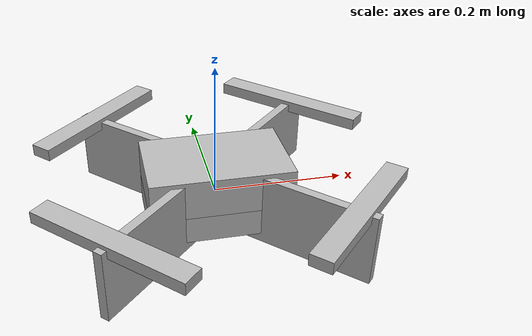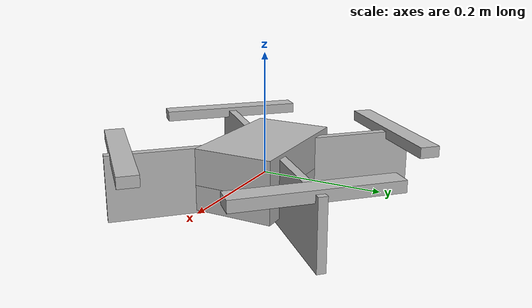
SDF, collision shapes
<?xml version="1.0" ?>
<sdf version='1.6'>
  <model name='spiri'>
	  	<static>true</static>

	  	<plugin name='simple_drone' filename='libplugin_drone.so'>
	        <bodyName>base</bodyName>
	        <imuTopic>/drone/imu</imuTopic>
	        <rollpitchProportionalGain>10.0</rollpitchProportionalGain>
	        <rollpitchDifferentialGain>5.0</rollpitchDifferentialGain>
	        <rollpitchLimit>0.5</rollpitchLimit>
	        <yawProportionalGain>2.0</yawProportionalGain>
	        <yawDifferentialGain>1.0</yawDifferentialGain>
	        <yawLimit>1.5</yawLimit>
	        <velocityXYProportionalGain>5.0</velocityXYProportionalGain>
	        <velocityXYDifferentialGain>2.3</velocityXYDifferentialGain>
	        <velocityXYLimit>2</velocityXYLimit>
	        <velocityZProportionalGain>5.0</velocityZProportionalGain>
	        <velocityZDifferentialGain>1.0</velocityZDifferentialGain>
	        <velocityZLimit>-1</velocityZLimit>
	        <positionXYProportionalGain>1.1</positionXYProportionalGain>
	        <positionXYDifferentialGain>0.0</positionXYDifferentialGain>
	        <positionXYIntegralGain>0.0</positionXYIntegralGain>
	        <positionXYLimit>5</positionXYLimit>
	        <positionZProportionalGain>1.0</positionZProportionalGain>
	        <positionZDifferentialGain>0.2</positionZDifferentialGain>
	        <positionZLimit>-1</positionZLimit>
	        <maxForce>40</maxForce>
	        <motionSmallNoise>0.05</motionSmallNoise>
	        <motionDriftNoise>0.03</motionDriftNoise>
	        <motionDriftNoiseTime>5.0</motionDriftNoiseTime>
	    </plugin>

	    <link name='base'>
	      	<pose frame=''>0 0 0 0 -0 -0</pose>
	      	<inertial>
		        <pose frame=''>0 0.00268 -0.000742 0 -0 0</pose>
		        <mass>1.437</mass>
		        <inertia>
					<ixx>0.1152</ixx>
					<ixy>0</ixy>
					<ixz>0</ixz>
					<iyy>0.1152</iyy>
					<iyz>0</iyz>
					<izz>0.218</izz>
	        	</inertia>
	      	</inertial>

		    <collision name='base_collision'>
		        <pose frame=''>0 0 -0.02103 0 -0 0</pose>
		        <geometry>
		        	<box>
		            	<size>0.21355 0.132 0.04206</size>
		          	</box>
		        </geometry>
		    </collision>
	      	<visual name='base_visual'>
	        	<pose frame=''>0 0 0 0 -0 0</pose>
		        <geometry>
		        	<mesh>
			            <scale>1 1 1</scale>
				    	<uri>model://spiri/meshes/spiri_base_bottom.dae</uri>
		          	</mesh>
		        </geometry>
	      	</visual>

		    <collision name='base_top_collision_1'>
		        <pose frame=''>0 0 0.03025 0 -0 0</pose>
		        <geometry>
		        	<box>
		            	<size>0.21355 0.132 0.0605</size>
		          	</box>
		        </geometry>
		    </collision>
		    <visual name='base_top_visual_1'>
		        <pose frame=''>0 0 0 0 -0 0</pose>
		        <geometry>
		        	<mesh>
		            	<scale>1 1 1</scale>
			    		<uri>model://spiri/meshes/spiri_base_top.dae</uri>
		          	</mesh>
		        </geometry>
		    </visual>

		    <collision name='base_fixed_joint_lump__shank_LF_collision_2'>
		        <pose frame=''>0.112711 0.112711 -0.001 0 -0 0.785398</pose>
		        <geometry>
			        <box>
			        	<size>0.2 0.014 0.11</size>
			        </box>
		        </geometry>
		    </collision>
		    <visual name='base_fixed_joint_lump__shank_LF_visual_2'>
		        <pose frame=''>0.042 0.042 -0.001 0 -0 0.785398</pose>
		        <geometry>
			        <mesh>
				        <scale>1 1 1</scale>
					    <uri>model://spiri/meshes/spiri_shank.dae</uri>
			        </mesh>
		        </geometry>
		    </visual>

	      	<collision name='base_fixed_joint_lump__shank_LH_collision_3'>
		        <pose frame=''>-0.112711 0.112711 -0.001 0 -0 2.35619</pose>
		        <geometry>
			        <box>
			        	<size>0.2 0.014 0.11</size>
			        </box>
		        </geometry>
	      	</collision>
	      	<visual name='base_fixed_joint_lump__shank_LH_visual_3'>
		        <pose frame=''>-0.042 0.042 -0.001 0 -0 2.35619</pose>
		        <geometry>
		          <mesh>
		            <scale>1 1 1</scale>
		            <uri>model://spiri/meshes/spiri_shank.dae</uri>
		          </mesh>
		        </geometry>
	      	</visual>

		    <collision name='base_fixed_joint_lump__shank_RF_collision_4'>
		        <pose frame=''>0.112711 -0.112711 -0.001 0 0 -0.785398</pose>
		        <geometry>
			        <box>
			        	<size>0.2 0.014 0.11</size>
			        </box>
		        </geometry>
		    </collision>
	      	<visual name='base_fixed_joint_lump__shank_RF_visual_4'>
		        <pose frame=''>0.042 -0.042 -0.001 0 0 -0.785398</pose>
		        <geometry>
		          	<mesh>
			            <scale>1 1 1</scale>
				    	<uri>model://spiri/meshes/spiri_shank.dae</uri>
		          	</mesh>
		        </geometry>
	      	</visual>

	      	<collision name='base_fixed_joint_lump__shank_RH_collision_5'>
		        <pose frame=''>-0.112711 -0.112711 -0.001 0 0 -2.35619</pose>
		        <geometry>
			        <box>
			        	<size>0.2 0.014 0.11</size>
			        </box>
		        </geometry>
	      	</collision>
	      	<visual name='base_fixed_joint_lump__shank_RH_visual_5'>
		        <pose frame=''>-0.042 -0.042 -0.001 0 0 -2.35619</pose>
		        <geometry>
		        	<mesh>
		            	<scale>1 1 1</scale>
			    		<uri>model://spiri/meshes/spiri_shank.dae</uri>
		          	</mesh>
		        </geometry>
	      	</visual>

	      	<!-- Camera sensor-->
	       	<sensor name="stereo_camera" type="camera">
		        <camera name="front">
		          	<horizontal_fov>2.09</horizontal_fov>
			        <image>
				        <width>800</width>
				        <height>800</height>
				        <format>R8G8B8</format>
			        </image>
			        <clip>
			            <near>0.1</near>
			            <far>100</far>
			        </clip>
			        <noise>
			            <type>gaussian</type>
			            <mean>0.0</mean>
			            <stddev>0.005</stddev>
			        </noise>
		        </camera>
	        	<camera name="depth">
			        <horizontal_fov>2.09</horizontal_fov>
			        <image>
			            <width>800</width>
			            <height>800</height>
			            <format>R8G8B8</format>
			        </image>
			        <clip>
			            <near>0.1</near>
			            <far>100</far>
			        </clip>
			        <noise>
			            <type>gaussian</type>
			            <mean>0.0</mean>
			            <stddev>0.005</stddev>
			        </noise>
		        </camera>
				<pose> -0.2 0.0 0.1 0 0.52 -3.14 </pose>
	        	<always_on>1</always_on>
	        	<update_rate>60</update_rate>
	        	<visualize>true</visualize>
				<plugin name='front_camera' filename='libplugin_ros_cam.so'>
					<imageTopicName>/drone/front_camera/image_raw</imageTopicName>
				</plugin>
	      	</sensor>
	      <!-- IMU sensor in 100fps -->
			<sensor name='sensor_imu' type='imu'>
				<always_on> 1 </always_on>
				<update_rate> 100 </update_rate>
				<pose> 0 0 0 0 0 0 </pose>
				<plugin name='ros_imu' filename='libplugin_ros_imu.so'>
				</plugin>
				<imu>
					<angular_velocity>
					<x>
					<noise type ='gaussian' >
						<mean> 0 </mean>
						<stddev> 0 </stddev>
					</noise>
				</x>
				<y>
					<noise type ='gaussian' >
						<mean> 0 </mean>
						<stddev> 0 </stddev>
					</noise>
				</y>
				<z>
					<noise type ='gaussian' >
						<mean> 0 </mean>
						<stddev> 0 </stddev>
					</noise>
				</z>
			</angular_velocity>
			<linear_acceleration>
					<x>
					<noise type ='gaussian' >
						<mean> 0 </mean>
						<stddev> 0 </stddev>
					</noise>
				</x>
				<y>
					<noise type ='gaussian' >
						<mean> 0 </mean>
						<stddev> 0 </stddev>
					</noise>
				</y>
				<z>
					<noise type ='gaussian' >
						<mean> 0 </mean>
						<stddev> 0 </stddev>
					</noise>
				</z>
			</linear_acceleration>
				</imu>
			</sensor>
		</link>

	 	<link name='propeller_LF'>
		    <pose frame=''>0.165037 0.165037 0.042 0 -0 0.785398</pose>
		    <inertial>
		        <pose frame=''>0 0 0 0 -0 0</pose>
		        <mass>0.01</mass>
		        <inertia>
		          	<ixx>0.0005299083</ixx>
		          	<ixy>0</ixy>
		          	<ixz>0</ixz>
		          	<iyy>0.0005235333</iyy>
		          	<iyz>0</iyz>
		          	<izz>0.000011775</izz>
		        </inertia>
		    </inertial>
		    <collision name='propeller_LF_collision'>
		        <pose frame=''>0 0 0.009 0 -0 0</pose>
		        <geometry>
		          	<box>
		            	<size>0.033 0.25 0.018</size>
		          	</box>
		        </geometry>
		    </collision>
		    <visual name='propeller_LF_visual'>
			    <pose frame=''>0 0 0 0 -0 0.785398</pose>
			    <geometry>
				    <mesh>
				       	<scale>1 1 1</scale>
						<uri>model://spiri/meshes/spiri_propeller.dae</uri>
				    </mesh>
			    </geometry>
		    </visual>
	    </link>
	    <joint name='shank_LF_to_propeller_LF' type='revolute'>
		    <child>propeller_LF</child>
		    <parent>base</parent>
		    <axis>
		        <xyz>0 0 1</xyz>
		        <limit>
			        <lower>-1e+16</lower>
			        <upper>1e+16</upper>
		        </limit>
		        <dynamics>
			        <spring_reference>0</spring_reference>
			        <spring_stiffness>0</spring_stiffness>
		        </dynamics>
		        <use_parent_model_frame>1</use_parent_model_frame>
		    </axis>
	    </joint>

	    <link name='propeller_LH'>
		    <pose frame=''>-0.165037 0.165037 0.042 0 -0 2.35619</pose>
		    <inertial>
		        <pose frame=''>0 0 0 0 -0 0</pose>
		        <mass>0.01</mass>
		        <inertia>
			        <ixx>0.0005299083</ixx>
			        <ixy>0</ixy>
			        <ixz>0</ixz>
			        <iyy>0.0005235333</iyy>
			        <iyz>0</iyz>
			        <izz>0.000011775</izz>
		        </inertia>
		    </inertial>
		    <collision name='propeller_LH_collision'>
		        <pose frame=''>0 0 0.009 0 -0 0</pose>
		        <geometry>
		          	<box>
		            	<size>0.033 0.25 0.018</size>
		          	</box>
		        </geometry>
		    </collision>
	      	<visual name='propeller_LH_visual'>
	        	<pose frame=''>0 0 0 0 -0 0.785398</pose>
	        	<geometry>
		          	<mesh>
		            	<scale>1 1 1</scale>
			    		<uri>model://spiri/meshes/spiri_propeller.dae</uri>
			        </mesh>
	        	</geometry>
	      	</visual>
	    </link>
	    <joint name='shank_LH_to_propeller_LH' type='revolute'>
	      	<child>propeller_LH</child>
	      	<parent>base</parent>
	      	<axis>
	        	<xyz>0 0 1</xyz>
		        <limit>
			        <lower>-1e+16</lower>
			        <upper>1e+16</upper>
		        </limit>
		        <dynamics>
		          	<spring_reference>0</spring_reference>
		          	<spring_stiffness>0</spring_stiffness>
		        </dynamics>
		        <use_parent_model_frame>1</use_parent_model_frame>
	      	</axis>
	    </joint>
	    <link name='propeller_RF'>
		    <pose frame=''>0.165037 -0.165037 0.042 0 0 -0.785398</pose>
		    <inertial>
		        <pose frame=''>0 0 0 0 -0 0</pose>
		        <mass>0.01</mass>
		        <inertia>
		          	<ixx>0.0005299083</ixx>
		          	<ixy>0</ixy>
		          	<ixz>0</ixz>
		          	<iyy>0.0005235333</iyy>
		          	<iyz>0</iyz>
		          	<izz>0.000011775</izz>
		        </inertia>
		    </inertial>
	      	<collision name='propeller_RF_collision'>
	        	<pose frame=''>0 0 0.009 0 -0 0</pose>
		        <geometry>
		          	<box>
		           		<size>0.033 0.25 0.018</size>
		          	</box>
		        </geometry>
	      	</collision>
		    <visual name='propeller_RF_visual'>
		        <pose frame=''>0 0 0 0 -0 0.785398</pose>
		        <geometry>
		          	<mesh>
			            <scale>1 1 1</scale>
				    	<uri>model://spiri/meshes/spiri_propeller.dae</uri>
		          	</mesh>
		        </geometry>
		    </visual>
	    </link>
	    <joint name='shank_RF_to_propeller_RF' type='revolute'>
		    <child>propeller_RF</child>
		    <parent>base</parent>
		    <axis>
		        <xyz>0 0 1</xyz>
		        <limit>
		        	<lower>-1e+16</lower>
		          	<upper>1e+16</upper>
		        </limit>
		        <dynamics>
		          	<spring_reference>0</spring_reference>
		          	<spring_stiffness>0</spring_stiffness>
		        </dynamics>
		        <use_parent_model_frame>1</use_parent_model_frame>
		    </axis>
	    </joint>

	    <link name='propeller_RH'>
	      	<pose frame=''>-0.165037 -0.165037 0.042 0 0 -2.35619</pose>
	      	<inertial>
		        <pose frame=''>0 0 0 0 -0 0</pose>
		        <mass>0.01</mass>
		        <inertia>
		          	<ixx>0.0005299083</ixx>
		          	<ixy>0</ixy>
		          	<ixz>0</ixz>
		          	<iyy>0.0005235333</iyy>
		          	<iyz>0</iyz>
		          	<izz>0.000011775</izz>
		        </inertia>
	      </inertial>
	      	<collision name='propeller_RH_collision'>
	        	<pose frame=''>0 0 0.009 0 -0 0</pose>
	        	<geometry>
		          	<box>
		            	<size>0.033 0.25 0.018</size>
		          	</box>
	       		</geometry>
	      	</collision>
	      	<visual name='propeller_RH_visual'>
	        	<pose frame=''>0 0 0 0 -0 0.785398</pose>
	        	<geometry>
	          		<mesh>
	            		<scale>1 1 1</scale>
		    			<uri>model://spiri/meshes/spiri_propeller.dae</uri>
	          		</mesh>
	        	</geometry>
	      	</visual>
	    </link>
	    <joint name='shank_RH_to_propeller_RH' type='revolute'>
	      	<child>propeller_RH</child>
	      	<parent>base</parent>
	      	<axis>
	        <xyz>0 0 1</xyz>
	        <limit>
	        	<lower>-1e+16</lower>
	          	<upper>1e+16</upper>
	        </limit>
	        <dynamics>
	          	<spring_reference>0</spring_reference>
	          	<spring_stiffness>0</spring_stiffness>
	        </dynamics>
	        <use_parent_model_frame>1</use_parent_model_frame>
	      	</axis>
	    </joint>
  </model>
</sdf>
